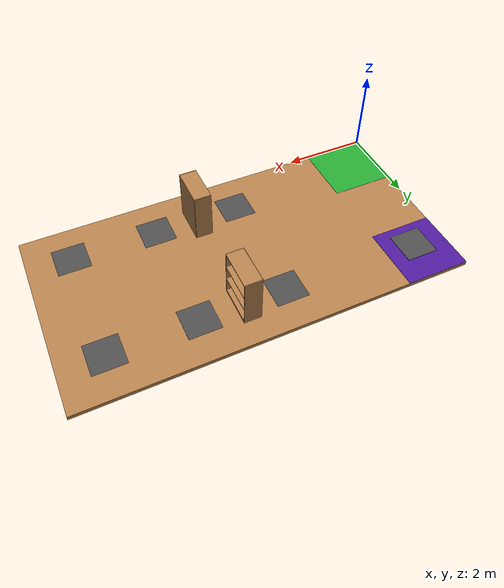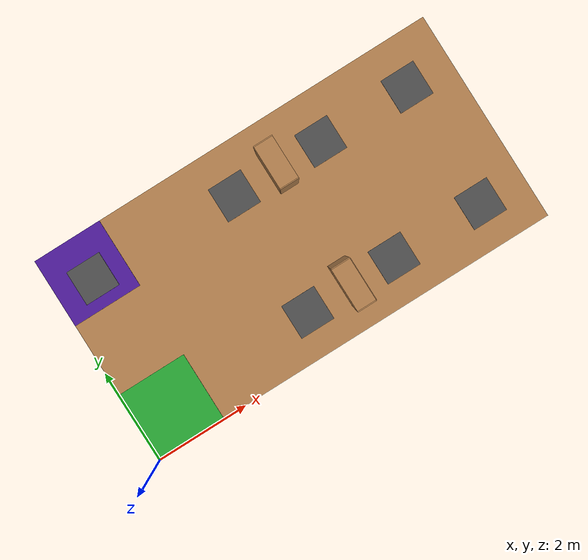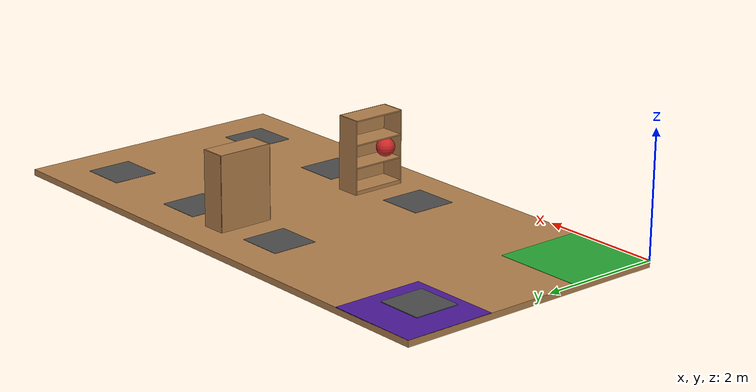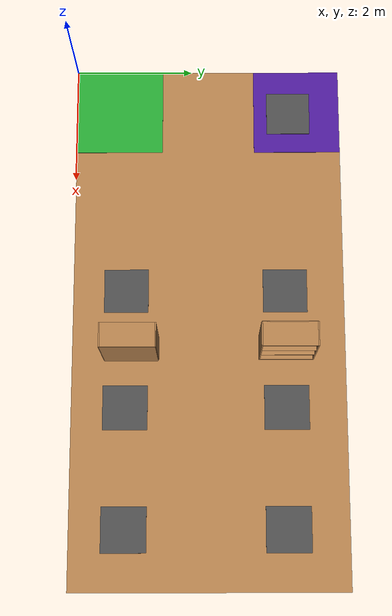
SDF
<sdf version="1.6">
 <world name="default">
  <light name="sun" type="directional">
   <pose>0 0 10 0 -0 0</pose>
   <diffuse>0.8 0.8 0.8 1</diffuse>
   <specular>0.2 0.2 0.2 1</specular>
   <attenuation>
    <range>1000</range>
    <constant>0.9</constant>
    <linear>0.01</linear>
    <quadratic>0.001</quadratic>
   </attenuation>
   <direction>-0.5 0.1 -0.9</direction>
  </light>
  <physics name="default_physics" default="0" type="ode">
   <ode>
    <solver>
     <type>quick</type>
     <iters>10</iters>
     <sor>1.3</sor>
     <use_dynamic_moi_rescaling>0</use_dynamic_moi_rescaling>
    </solver>
    <constraints>
     <cfm>0</cfm>
     <erp>0.2</erp>
     <contact_max_correcting_vel>100</contact_max_correcting_vel>
     <contact_surface_layer>0.001</contact_surface_layer>
    </constraints>
   </ode>
   <max_step_size>0.004</max_step_size>
   <real_time_factor>1</real_time_factor>
   <real_time_update_rate>250</real_time_update_rate>
  </physics>
  <gravity>0 0 -9.8066</gravity>
  <magnetic_field>6e-06 2.3e-05 -4.2e-05</magnetic_field>
  <atmosphere type="adiabatic"/>
  <scene><ambient>0.4 0.4 0.4 1</ambient><background>0.7 0.7 0.7 1</background><shadows>1</shadows></scene>
  <audio><device>default</device></audio>
  <spherical_coordinates>
   <surface_model>EARTH_WGS84</surface_model>
   <latitude_deg>0</latitude_deg>
   <longitude_deg>0</longitude_deg>
   <elevation>0</elevation>
   <heading_deg>0</heading_deg>
  </spherical_coordinates>
  <model name="box_5">
   <link name="link">
    <inertial>
     <mass>1</mass>
     <inertia><ixx>1</ixx><ixy>0</ixy><ixz>0</ixz><iyy>1</iyy><iyz>0</iyz><izz>1</izz></inertia>
    </inertial>
    <visual name="visual">
     <geometry><box><size>9 4.6 0.1</size></box></geometry>
     <material>
      <script><name>Gazebo/WoodFloor</name><uri>file://media/materials/scripts/gazebo.material</uri></script>
      <shader type="vertex"><normal_map>__default__</normal_map></shader>
      <ambient>0.5 0.5 0.5 1</ambient>
      <diffuse>1 1 1 1</diffuse>
      <specular>0 0 0 1</specular>
      <emissive>0 0 0 1</emissive>
     </material>
    </visual>
    <collision name="collision">
     <geometry><box><size>9 4.6 0.1</size></box></geometry>
     <surface>
      <friction>
       <ode><mu>1</mu><mu2>1</mu2><fdir1>0 0 0</fdir1><slip1>0</slip1><slip2>0</slip2></ode>
       <torsional>
        <coefficient>1</coefficient>
        <patch_radius>0</patch_radius>
        <surface_radius>0</surface_radius>
        <use_patch_radius>1</use_patch_radius>
        <ode><slip>0</slip></ode>
       </torsional>
      </friction>
      <bounce><restitution_coefficient>0</restitution_coefficient><threshold>1e+06</threshold></bounce>
      <contact>
       <collide_without_contact>0</collide_without_contact>
       <collide_without_contact_bitmask>1</collide_without_contact_bitmask>
       <collide_bitmask>1</collide_bitmask>
       <ode>
        <soft_cfm>0</soft_cfm>
        <soft_erp>0.2</soft_erp>
        <kp>1e+13</kp>
        <kd>1</kd>
        <max_vel>0.01</max_vel>
        <min_depth>0</min_depth>
       </ode>
       <bullet>
        <split_impulse>1</split_impulse>
        <split_impulse_penetration_threshold>-0.01</split_impulse_penetration_threshold>
        <soft_cfm>0</soft_cfm>
        <soft_erp>0.2</soft_erp>
        <kp>1e+13</kp>
        <kd>1</kd>
       </bullet>
      </contact>
     </surface>
    </collision>
   </link>
   <static>1</static>
   <pose>4.5 2.3 -0.05 0 -0 0</pose>
  </model>
  <model name="box_13">
   <link name="link">
    <inertial>
     <mass>1</mass>
     <inertia><ixx>1</ixx><ixy>0</ixy><ixz>0</ixz><iyy>1</iyy><iyz>0</iyz><izz>1</izz></inertia>
    </inertial>
    <visual name="visual">
     <geometry><box><size>1.5 1.5 0.01</size></box></geometry>
     <material>
      <script><name>Gazebo/Green</name><uri>file://media/materials/scripts/gazebo.material</uri></script>
      <shader type="vertex"><normal_map>__default__</normal_map></shader>
      <ambient>0 1 0 1</ambient>
      <diffuse>0 1 0 1</diffuse>
      <specular>0.1 0.1 0.1 1</specular>
      <emissive>0 0 0 1</emissive>
     </material>
    </visual>
    <collision name="collision">
     <geometry><box><size>1.5 1.5 0.01</size></box></geometry>
     <surface>
      <friction>
       <ode><mu>1</mu><mu2>1</mu2><fdir1>0 0 0</fdir1><slip1>0</slip1><slip2>0</slip2></ode>
       <torsional>
        <coefficient>1</coefficient>
        <patch_radius>0</patch_radius>
        <surface_radius>0</surface_radius>
        <use_patch_radius>1</use_patch_radius>
        <ode><slip>0</slip></ode>
       </torsional>
      </friction>
      <bounce><restitution_coefficient>0</restitution_coefficient><threshold>1e+06</threshold></bounce>
      <contact>
       <collide_without_contact>0</collide_without_contact>
       <collide_without_contact_bitmask>1</collide_without_contact_bitmask>
       <collide_bitmask>1</collide_bitmask>
       <ode>
        <soft_cfm>0</soft_cfm>
        <soft_erp>0.2</soft_erp>
        <kp>1e+13</kp>
        <kd>1</kd>
        <max_vel>0.01</max_vel>
        <min_depth>0</min_depth>
       </ode>
       <bullet>
        <split_impulse>1</split_impulse>
        <split_impulse_penetration_threshold>-0.01</split_impulse_penetration_threshold>
        <soft_cfm>0</soft_cfm>
        <soft_erp>0.2</soft_erp>
        <kp>1e+13</kp>
        <kd>1</kd>
       </bullet>
      </contact>
     </surface>
    </collision>
   </link>
   <static>1</static>
   <pose>0.75 0.75 0 0 -0 0</pose>
  </model>
  <model name="box_14">
   <link name="link">
    <inertial>
     <mass>1</mass>
     <inertia><ixx>1</ixx><ixy>0</ixy><ixz>0</ixz><iyy>1</iyy><iyz>0</iyz><izz>1</izz></inertia>
    </inertial>
    <visual name="visual">
     <geometry><box><size>1.5 1.5 0.01</size></box></geometry>
     <material>
      <script><name>Gazebo/Indigo</name><uri>file://media/materials/scripts/gazebo.material</uri></script>
      <shader type="vertex"><normal_map>__default__</normal_map></shader>
      <ambient>0.33 0 0.5 1</ambient>
      <diffuse>0.33 0 0.5 1</diffuse>
      <specular>0.1 0.1 0.1 1</specular>
      <emissive>0 0 0 1</emissive>
     </material>
    </visual>
    <collision name="collision">
     <geometry><box><size>1.5 1.5 0.01</size></box></geometry>
     <surface>
      <friction>
       <ode><mu>1</mu><mu2>1</mu2><fdir1>0 0 0</fdir1><slip1>0</slip1><slip2>0</slip2></ode>
       <torsional>
        <coefficient>1</coefficient>
        <patch_radius>0</patch_radius>
        <surface_radius>0</surface_radius>
        <use_patch_radius>1</use_patch_radius>
        <ode><slip>0</slip></ode>
       </torsional>
      </friction>
      <bounce><restitution_coefficient>0</restitution_coefficient><threshold>1e+06</threshold></bounce>
      <contact>
       <collide_without_contact>0</collide_without_contact>
       <collide_without_contact_bitmask>1</collide_without_contact_bitmask>
       <collide_bitmask>1</collide_bitmask>
       <ode>
        <soft_cfm>0</soft_cfm>
        <soft_erp>0.2</soft_erp>
        <kp>1e+13</kp>
        <kd>1</kd>
        <max_vel>0.01</max_vel>
        <min_depth>0</min_depth>
       </ode>
       <bullet>
        <split_impulse>1</split_impulse>
        <split_impulse_penetration_threshold>-0.01</split_impulse_penetration_threshold>
        <soft_cfm>0</soft_cfm>
        <soft_erp>0.2</soft_erp>
        <kp>1e+13</kp>
        <kd>1</kd>
       </bullet>
      </contact>
     </surface>
    </collision>
   </link>
   <static>1</static>
   <pose>0.75 3.85 0 0 -0 0</pose>
  </model>
  <model name="bookshelf">
   <static>1</static>
   <link name="link">
    <inertial><mass>1</mass></inertial>
    <collision name="back">
     <pose>0 0.005 0.6 0 -0 0</pose>
     <geometry><box><size>0.9 0.01 1.2</size></box></geometry>
    </collision>
    <visual name="visual1">
     <pose>0 0.005 0.6 0 -0 0</pose>
     <geometry><box><size>0.9 0.01 1.2</size></box></geometry>
     <material>
      <script><uri>file://media/materials/scripts/gazebo.material</uri><name>Gazebo/Wood</name></script>
     </material>
    </visual>
    <collision name="left_side">
     <pose>0.45 -0.195 0.6 0 -0 0</pose>
     <geometry><box><size>0.02 0.4 1.2</size></box></geometry>
    </collision>
    <visual name="visual2">
     <pose>0.45 -0.195 0.6 0 -0 0</pose>
     <geometry><box><size>0.02 0.4 1.2</size></box></geometry>
     <material>
      <script><uri>file://media/materials/scripts/gazebo.material</uri><name>Gazebo/Wood</name></script>
     </material>
    </visual>
    <collision name="right_side">
     <pose>-0.45 -0.195 0.6 0 -0 0</pose>
     <geometry><box><size>0.02 0.4 1.2</size></box></geometry>
    </collision>
    <visual name="visual3">
     <pose>-0.45 -0.195 0.6 0 -0 0</pose>
     <geometry><box><size>0.02 0.4 1.2</size></box></geometry>
     <material>
      <script><uri>file://media/materials/scripts/gazebo.material</uri><name>Gazebo/Wood</name></script>
     </material>
    </visual>
    <collision name="bottom">
     <pose>0 -0.195 0.03 0 -0 0</pose>
     <geometry><box><size>0.88 0.4 0.06</size></box></geometry>
    </collision>
    <visual name="visual4">
     <pose>0 -0.195 0.03 0 -0 0</pose>
     <geometry><box><size>0.88 0.4 0.06</size></box></geometry>
     <material>
      <script><uri>file://media/materials/scripts/gazebo.material</uri><name>Gazebo/Wood</name></script>
     </material>
    </visual>
    <collision name="top">
     <pose>0 -0.195 1.19 0 -0 0</pose>
     <geometry><box><size>0.88 0.4 0.02</size></box></geometry>
    </collision>
    <visual name="visual5">
     <pose>0 -0.195 1.19 0 -0 0</pose>
     <geometry><box><size>0.88 0.4 0.02</size></box></geometry>
     <material>
      <script><uri>file://media/materials/scripts/gazebo.material</uri><name>Gazebo/Wood</name></script>
     </material>
    </visual>
    <collision name="low_shelf">
     <pose>0 -0.195 0.43 0 -0 0</pose>
     <geometry><box><size>0.88 0.4 0.02</size></box></geometry>
    </collision>
    <visual name="visual6">
     <pose>0 -0.195 0.43 0 -0 0</pose>
     <geometry><box><size>0.88 0.4 0.02</size></box></geometry>
     <material>
      <script><uri>file://media/materials/scripts/gazebo.material</uri><name>Gazebo/Wood</name></script>
     </material>
    </visual>
    <collision name="high_shelf">
     <pose>0 -0.195 0.8 0 -0 0</pose>
     <geometry><box><size>0.88 0.4 0.02</size></box></geometry>
    </collision>
    <visual name="visual7">
     <pose>0 -0.195 0.8 0 -0 0</pose>
     <geometry><box><size>0.88 0.4 0.02</size></box></geometry>
     <material>
      <script><uri>file://media/materials/scripts/gazebo.material</uri><name>Gazebo/Wood</name></script>
     </material>
    </visual>
   </link>
   <pose>4.8 3.6 0 0 -0 1.57</pose>
  </model>
  <model name="bookshelf_0">
   <static>1</static>
   <link name="link">
    <inertial><mass>1</mass></inertial>
    <collision name="back">
     <pose>0 0.005 0.6 0 -0 0</pose>
     <geometry><box><size>0.9 0.01 1.2</size></box></geometry>
    </collision>
    <visual name="visual1">
     <pose>0 0.005 0.6 0 -0 0</pose>
     <geometry><box><size>0.9 0.01 1.2</size></box></geometry>
     <material>
      <script><uri>file://media/materials/scripts/gazebo.material</uri><name>Gazebo/Wood</name></script>
     </material>
    </visual>
    <collision name="left_side">
     <pose>0.45 -0.195 0.6 0 -0 0</pose>
     <geometry><box><size>0.02 0.4 1.2</size></box></geometry>
    </collision>
    <visual name="visual2">
     <pose>0.45 -0.195 0.6 0 -0 0</pose>
     <geometry><box><size>0.02 0.4 1.2</size></box></geometry>
     <material>
      <script><uri>file://media/materials/scripts/gazebo.material</uri><name>Gazebo/Wood</name></script>
     </material>
    </visual>
    <collision name="right_side">
     <pose>-0.45 -0.195 0.6 0 -0 0</pose>
     <geometry><box><size>0.02 0.4 1.2</size></box></geometry>
    </collision>
    <visual name="visual3">
     <pose>-0.45 -0.195 0.6 0 -0 0</pose>
     <geometry><box><size>0.02 0.4 1.2</size></box></geometry>
     <material>
      <script><uri>file://media/materials/scripts/gazebo.material</uri><name>Gazebo/Wood</name></script>
     </material>
    </visual>
    <collision name="bottom">
     <pose>0 -0.195 0.03 0 -0 0</pose>
     <geometry><box><size>0.88 0.4 0.06</size></box></geometry>
    </collision>
    <visual name="visual4">
     <pose>0 -0.195 0.03 0 -0 0</pose>
     <geometry><box><size>0.88 0.4 0.06</size></box></geometry>
     <material>
      <script><uri>file://media/materials/scripts/gazebo.material</uri><name>Gazebo/Wood</name></script>
     </material>
    </visual>
    <collision name="top">
     <pose>0 -0.195 1.19 0 -0 0</pose>
     <geometry><box><size>0.88 0.4 0.02</size></box></geometry>
    </collision>
    <visual name="visual5">
     <pose>0 -0.195 1.19 0 -0 0</pose>
     <geometry><box><size>0.88 0.4 0.02</size></box></geometry>
     <material>
      <script><uri>file://media/materials/scripts/gazebo.material</uri><name>Gazebo/Wood</name></script>
     </material>
    </visual>
    <collision name="low_shelf">
     <pose>0 -0.195 0.43 0 -0 0</pose>
     <geometry><box><size>0.88 0.4 0.02</size></box></geometry>
    </collision>
    <visual name="visual6">
     <pose>0 -0.195 0.43 0 -0 0</pose>
     <geometry><box><size>0.88 0.4 0.02</size></box></geometry>
     <material>
      <script><uri>file://media/materials/scripts/gazebo.material</uri><name>Gazebo/Wood</name></script>
     </material>
    </visual>
    <collision name="high_shelf">
     <pose>0 -0.195 0.8 0 -0 0</pose>
     <geometry><box><size>0.88 0.4 0.02</size></box></geometry>
    </collision>
    <visual name="visual7">
     <pose>0 -0.195 0.8 0 -0 0</pose>
     <geometry><box><size>0.88 0.4 0.02</size></box></geometry>
     <material>
      <script><uri>file://media/materials/scripts/gazebo.material</uri><name>Gazebo/Wood</name></script>
     </material>
    </visual>
   </link>
   <pose>5.2 1 0 0 0 -1.57</pose>
  </model>
  <model name="sphere_1">
   <link name="link">
    <inertial>
     <mass>1</mass>
     <inertia><ixx>1</ixx><ixy>0</ixy><ixz>0</ixz><iyy>1</iyy><iyz>0</iyz><izz>1</izz></inertia>
    </inertial>
    <visual name="visual">
     <geometry><sphere><radius>0.15</radius></sphere></geometry>
     <material>
      <script><name>Gazebo/Red</name><uri>file://media/materials/scripts/gazebo.material</uri></script>
      <shader type="vertex"><normal_map>__default__</normal_map></shader>
      <ambient>1 0 0 1</ambient>
      <diffuse>1 0 0 1</diffuse>
      <specular>0.1 0.1 0.1 1</specular>
      <emissive>0 0 0 1</emissive>
     </material>
    </visual>
    <collision name="collision">
     <geometry><sphere><radius>0.15</radius></sphere></geometry>
     <surface>
      <friction>
       <ode><mu>1</mu><mu2>1</mu2><fdir1>0 0 0</fdir1><slip1>0</slip1><slip2>0</slip2></ode>
       <torsional>
        <coefficient>1</coefficient>
        <patch_radius>0</patch_radius>
        <surface_radius>0</surface_radius>
        <use_patch_radius>1</use_patch_radius>
        <ode><slip>0</slip></ode>
       </torsional>
      </friction>
      <bounce><restitution_coefficient>0</restitution_coefficient><threshold>1e+06</threshold></bounce>
      <contact>
       <collide_without_contact>0</collide_without_contact>
       <collide_without_contact_bitmask>1</collide_without_contact_bitmask>
       <collide_bitmask>1</collide_bitmask>
       <ode>
        <soft_cfm>0</soft_cfm>
        <soft_erp>0.2</soft_erp>
        <kp>1e+13</kp>
        <kd>1</kd>
        <max_vel>0.01</max_vel>
        <min_depth>0</min_depth>
       </ode>
       <bullet>
        <split_impulse>1</split_impulse>
        <split_impulse_penetration_threshold>-0.01</split_impulse_penetration_threshold>
        <soft_cfm>0</soft_cfm>
        <soft_erp>0.2</soft_erp>
        <kp>1e+13</kp>
        <kd>1</kd>
       </bullet>
      </contact>
     </surface>
    </collision>
   </link>
   <static>1</static>
   <pose>4.95751 0.732093 0.599725 0 -0 0</pose>
  </model>
  <model name="marker_1">
   <static>1</static>
   <link name="link">
    <collision name="collision"><geometry><box><size>0.75 0.75 0.01</size></box></geometry></collision>
    <visual name="visual">
     <cast_shadows>0</cast_shadows>
     <geometry><box><size>0.75 0.75 0.01</size></box></geometry>
     <material>
      <script>
       <uri>model://marker/materials/scripts</uri>
       <uri>model://marker/materials/textures</uri>
       <name>vrc/asphalt</name>
      </script>
     </material>
    </visual>
   </link>
   <pose>4 0.9 0 0 -0 0</pose>
  </model>
  <model name="marker_2">
   <static>1</static>
   <link name="link">
    <collision name="collision"><geometry><box><size>0.75 0.75 0.01</size></box></geometry></collision>
    <visual name="visual">
     <cast_shadows>0</cast_shadows>
     <geometry><box><size>0.75 0.75 0.01</size></box></geometry>
     <material>
      <script>
       <uri>model://marker/materials/scripts</uri>
       <uri>model://marker/materials/textures</uri>
       <name>vrc/asphalt</name>
      </script>
     </material>
    </visual>
   </link>
   <pose>6 0.9 0 0 -0 0</pose>
  </model>
  <model name="marker_3">
   <static>1</static>
   <link name="link">
    <collision name="collision"><geometry><box><size>0.75 0.75 0.01</size></box></geometry></collision>
    <visual name="visual">
     <cast_shadows>0</cast_shadows>
     <geometry><box><size>0.75 0.75 0.01</size></box></geometry>
     <material>
      <script>
       <uri>model://marker/materials/scripts</uri>
       <uri>model://marker/materials/textures</uri>
       <name>vrc/asphalt</name>
      </script>
     </material>
    </visual>
   </link>
   <pose>8 0.9 0 0 -0 0</pose>
  </model>
  <model name="marker_4">
   <static>1</static>
   <link name="link">
    <collision name="collision"><geometry><box><size>0.75 0.75 0.01</size></box></geometry></collision>
    <visual name="visual">
     <cast_shadows>0</cast_shadows>
     <geometry><box><size>0.75 0.75 0.01</size></box></geometry>
     <material>
      <script>
       <uri>model://marker/materials/scripts</uri>
       <uri>model://marker/materials/textures</uri>
       <name>vrc/asphalt</name>
      </script>
     </material>
    </visual>
   </link>
   <pose>4 3.6 0 0 -0 0</pose>
  </model>
  <model name="marker_5">
   <static>1</static>
   <link name="link">
    <collision name="collision"><geometry><box><size>0.75 0.75 0.01</size></box></geometry></collision>
    <visual name="visual">
     <cast_shadows>0</cast_shadows>
     <geometry><box><size>0.75 0.75 0.01</size></box></geometry>
     <material>
      <script>
       <uri>model://marker/materials/scripts</uri>
       <uri>model://marker/materials/textures</uri>
       <name>vrc/asphalt</name>
      </script>
     </material>
    </visual>
   </link>
   <pose>6 3.6 0 0 -0 0</pose>
  </model>
  <model name="marker_6">
   <static>1</static>
   <link name="link">
    <collision name="collision"><geometry><box><size>0.75 0.75 0.01</size></box></geometry></collision>
    <visual name="visual">
     <cast_shadows>0</cast_shadows>
     <geometry><box><size>0.75 0.75 0.01</size></box></geometry>
     <material>
      <script>
       <uri>model://marker/materials/scripts</uri>
       <uri>model://marker/materials/textures</uri>
       <name>vrc/asphalt</name>
      </script>
     </material>
    </visual>
   </link>
   <pose>8 3.6 0 0 -0 0</pose>
  </model>
  <model name="marker_1">
   <static>1</static>
   <link name="link">
    <collision name="collision"><geometry><box><size>0.75 0.75 0.01</size></box></geometry></collision>
    <visual name="visual">
     <cast_shadows>0</cast_shadows>
     <geometry><box><size>0.75 0.75 0.01</size></box></geometry>
     <material>
      <script>
       <uri>model://marker/materials/scripts</uri>
       <uri>model://marker/materials/textures</uri>
       <name>vrc/asphalt</name>
      </script>
     </material>
    </visual>
   </link>
   <pose>4 0.9 0 0 -0 0</pose>
  </model>
  <model name="marker_2">
   <static>1</static>
   <link name="link">
    <collision name="collision"><geometry><box><size>0.75 0.75 0.01</size></box></geometry></collision>
    <visual name="visual">
     <cast_shadows>0</cast_shadows>
     <geometry><box><size>0.75 0.75 0.01</size></box></geometry>
     <material>
      <script>
       <uri>model://marker/materials/scripts</uri>
       <uri>model://marker/materials/textures</uri>
       <name>vrc/asphalt</name>
      </script>
     </material>
    </visual>
   </link>
   <pose>6 0.9 0 0 -0 0</pose>
  </model>
  <model name="marker_3">
   <static>1</static>
   <link name="link">
    <collision name="collision"><geometry><box><size>0.75 0.75 0.01</size></box></geometry></collision>
    <visual name="visual">
     <cast_shadows>0</cast_shadows>
     <geometry><box><size>0.75 0.75 0.01</size></box></geometry>
     <material>
      <script>
       <uri>model://marker/materials/scripts</uri>
       <uri>model://marker/materials/textures</uri>
       <name>vrc/asphalt</name>
      </script>
     </material>
    </visual>
   </link>
   <pose>8 0.9 0 0 -0 0</pose>
  </model>
  <model name="marker_4">
   <static>1</static>
   <link name="link">
    <collision name="collision"><geometry><box><size>0.75 0.75 0.01</size></box></geometry></collision>
    <visual name="visual">
     <cast_shadows>0</cast_shadows>
     <geometry><box><size>0.75 0.75 0.01</size></box></geometry>
     <material>
      <script>
       <uri>model://marker/materials/scripts</uri>
       <uri>model://marker/materials/textures</uri>
       <name>vrc/asphalt</name>
      </script>
     </material>
    </visual>
   </link>
   <pose>4 3.6 0 0 -0 0</pose>
  </model>
  <model name="marker_5">
   <static>1</static>
   <link name="link">
    <collision name="collision"><geometry><box><size>0.75 0.75 0.01</size></box></geometry></collision>
    <visual name="visual">
     <cast_shadows>0</cast_shadows>
     <geometry><box><size>0.75 0.75 0.01</size></box></geometry>
     <material>
      <script>
       <uri>model://marker/materials/scripts</uri>
       <uri>model://marker/materials/textures</uri>
       <name>vrc/asphalt</name>
      </script>
     </material>
    </visual>
   </link>
   <pose>6 3.6 0 0 -0 0</pose>
  </model>
  <model name="marker_6">
   <static>1</static>
   <link name="link">
    <collision name="collision"><geometry><box><size>0.75 0.75 0.01</size></box></geometry></collision>
    <visual name="visual">
     <cast_shadows>0</cast_shadows>
     <geometry><box><size>0.75 0.75 0.01</size></box></geometry>
     <material>
      <script>
       <uri>model://marker/materials/scripts</uri>
       <uri>model://marker/materials/textures</uri>
       <name>vrc/asphalt</name>
      </script>
     </material>
    </visual>
   </link>
   <pose>8 3.6 0 0 -0 0</pose>
  </model>
  <model name="marker_0">
   <static>1</static>
   <link name="link">
    <collision name="collision"><geometry><box><size>0.75 0.75 0.01</size></box></geometry></collision>
    <visual name="visual">
     <cast_shadows>0</cast_shadows>
     <geometry><box><size>0.75 0.75 0.01</size></box></geometry>
     <material>
      <script>
       <uri>model://marker/materials/scripts</uri>
       <uri>model://marker/materials/textures</uri>
       <name>vrc/asphalt</name>
      </script>
     </material>
    </visual>
   </link>
   <pose>0.8 3.7 0.05 0 -0 0</pose>
  </model>
  <model name="sphere_3">
   <link name="link">
    <inertial>
     <mass>1</mass>
     <inertia><ixx>1</ixx><ixy>0</ixy><ixz>0</ixz><iyy>1</iyy><iyz>0</iyz><izz>1</izz></inertia>
    </inertial>
    <visual name="visual">
     <geometry><sphere><radius>0.15</radius></sphere></geometry>
     <material>
      <script><name>Gazebo/SkyBlue</name><uri>file://media/materials/scripts/gazebo.material</uri></script>
      <shader type="vertex"><normal_map>__default__</normal_map></shader>
      <ambient>0.13 0.44 0.7 1</ambient>
      <diffuse>0 0 1 1</diffuse>
      <specular>0.1 0.1 0.1 1</specular>
      <emissive>0 0 0 1</emissive>
     </material>
    </visual>
    <collision name="collision">
     <geometry><sphere><radius>0.15</radius></sphere></geometry>
     <surface>
      <friction>
       <ode><mu>1</mu><mu2>1</mu2><fdir1>0 0 0</fdir1><slip1>0</slip1><slip2>0</slip2></ode>
       <torsional>
        <coefficient>1</coefficient>
        <patch_radius>0</patch_radius>
        <surface_radius>0</surface_radius>
        <use_patch_radius>1</use_patch_radius>
        <ode><slip>0</slip></ode>
       </torsional>
      </friction>
      <bounce><restitution_coefficient>0</restitution_coefficient><threshold>1e+06</threshold></bounce>
      <contact>
       <collide_without_contact>0</collide_without_contact>
       <collide_without_contact_bitmask>1</collide_without_contact_bitmask>
       <collide_bitmask>1</collide_bitmask>
       <ode>
        <soft_cfm>0</soft_cfm>
        <soft_erp>0.2</soft_erp>
        <kp>1e+13</kp>
        <kd>1</kd>
        <max_vel>0.01</max_vel>
        <min_depth>0</min_depth>
       </ode>
       <bullet>
        <split_impulse>1</split_impulse>
        <split_impulse_penetration_threshold>-0.01</split_impulse_penetration_threshold>
        <soft_cfm>0</soft_cfm>
        <soft_erp>0.2</soft_erp>
        <kp>1e+13</kp>
        <kd>1</kd>
       </bullet>
      </contact>
     </surface>
    </collision>
   </link>
   <static>1</static>
   <pose>4.97045 3.37821 0.959665 0 -0 0</pose>
  </model>
 </world>
</sdf>
